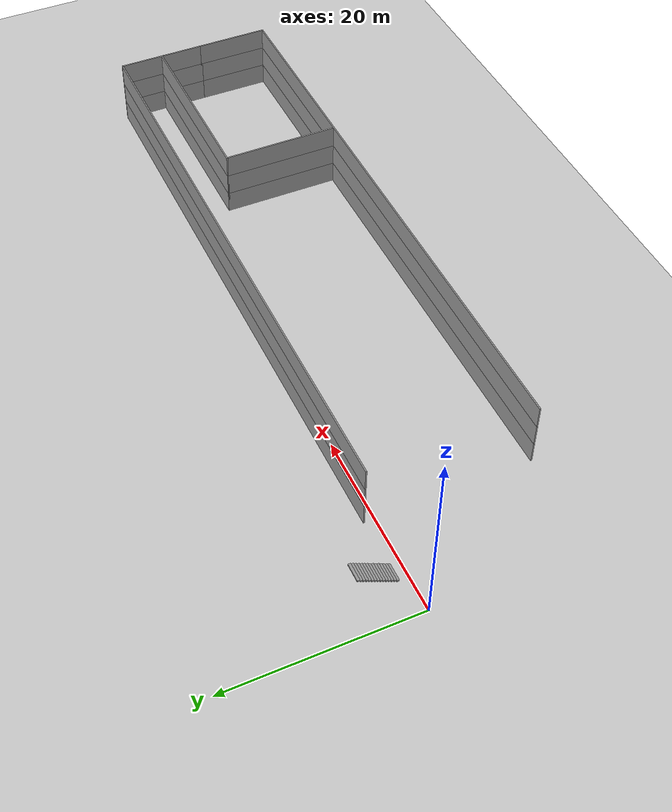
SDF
<sdf version="1.7">
 <world name="default">
  <model name="ground_plane">
   <pose>30 30 0 0 -0 0</pose>
   <static>1</static>
   <link name="link">
    <collision name="collision">
     <geometry><plane><normal>0 0 1</normal><size>100 100</size></plane></geometry>
     <surface><friction><ode><mu>100</mu><mu2>50</mu2></ode></friction></surface>
    </collision>
    <visual name="visual">
     <cast_shadows>0</cast_shadows>
     <geometry><plane><normal>0 0 1</normal><size>100 100</size></plane></geometry>
     <material>
      <script><uri>file://media/materials/scripts/gazebo.material</uri><name>Gazebo/Grey</name></script>
     </material>
    </visual>
   </link>
  </model>
  <model name="Soterrani_AT">
   <pose>30.7763 24.7178 0 0 0 -1.57187</pose>
   <link name="Stairs_2">
    <visual name="Stairs_2_Visual_0">
     <pose>22.8054 -27.5217 2.58333 0 -0 -1.5708</pose>
     <geometry><box><size>1.86465 0.272531 0.166667</size></box></geometry>
     <material>
      <script><uri>file://media/materials/scripts/gazebo.material</uri><name>Gazebo/Grey</name></script>
      <ambient>1 1 1 1</ambient>
     </material>
     <meta><layer>1</layer></meta>
    </visual>
    <collision name="Stairs_2_Collision_0">
     <geometry><box><size>1.86465 0.272531 0.166667</size></box></geometry>
     <pose>22.8054 -27.5217 2.58333 0 -0 -1.5708</pose>
    </collision>
    <visual name="Stairs_2_Visual_1">
     <pose>22.5329 -27.5217 2.75 0 -0 -1.5708</pose>
     <geometry><box><size>1.86465 0.272531 0.166667</size></box></geometry>
     <material>
      <script><uri>file://media/materials/scripts/gazebo.material</uri><name>Gazebo/Grey</name></script>
      <ambient>1 1 1 1</ambient>
     </material>
     <meta><layer>1</layer></meta>
    </visual>
    <collision name="Stairs_2_Collision_1">
     <geometry><box><size>1.86465 0.272531 0.166667</size></box></geometry>
     <pose>22.5329 -27.5217 2.75 0 -0 -1.5708</pose>
    </collision>
    <visual name="Stairs_2_Visual_2">
     <pose>22.2603 -27.5217 2.91667 0 -0 -1.5708</pose>
     <geometry><box><size>1.86465 0.272531 0.166667</size></box></geometry>
     <material>
      <script><uri>file://media/materials/scripts/gazebo.material</uri><name>Gazebo/Grey</name></script>
      <ambient>1 1 1 1</ambient>
     </material>
     <meta><layer>1</layer></meta>
    </visual>
    <collision name="Stairs_2_Collision_2">
     <geometry><box><size>1.86465 0.272531 0.166667</size></box></geometry>
     <pose>22.2603 -27.5217 2.91667 0 -0 -1.5708</pose>
    </collision>
    <visual name="Stairs_2_Visual_3">
     <pose>21.9878 -27.5217 3.08333 0 -0 -1.5708</pose>
     <geometry><box><size>1.86465 0.272531 0.166667</size></box></geometry>
     <material>
      <script><uri>file://media/materials/scripts/gazebo.material</uri><name>Gazebo/Grey</name></script>
      <ambient>1 1 1 1</ambient>
     </material>
     <meta><layer>1</layer></meta>
    </visual>
    <collision name="Stairs_2_Collision_3">
     <geometry><box><size>1.86465 0.272531 0.166667</size></box></geometry>
     <pose>21.9878 -27.5217 3.08333 0 -0 -1.5708</pose>
    </collision>
    <visual name="Stairs_2_Visual_4">
     <pose>21.7153 -27.5217 3.25 0 -0 -1.5708</pose>
     <geometry><box><size>1.86465 0.272531 0.166667</size></box></geometry>
     <material>
      <script><uri>file://media/materials/scripts/gazebo.material</uri><name>Gazebo/Grey</name></script>
      <ambient>1 1 1 1</ambient>
     </material>
     <meta><layer>1</layer></meta>
    </visual>
    <collision name="Stairs_2_Collision_4">
     <geometry><box><size>1.86465 0.272531 0.166667</size></box></geometry>
     <pose>21.7153 -27.5217 3.25 0 -0 -1.5708</pose>
    </collision>
    <visual name="Stairs_2_Visual_5">
     <pose>21.4427 -27.5217 3.41667 0 -0 -1.5708</pose>
     <geometry><box><size>1.86465 0.272531 0.166667</size></box></geometry>
     <material>
      <script><uri>file://media/materials/scripts/gazebo.material</uri><name>Gazebo/Grey</name></script>
      <ambient>1 1 1 1</ambient>
     </material>
     <meta><layer>1</layer></meta>
    </visual>
    <collision name="Stairs_2_Collision_5">
     <geometry><box><size>1.86465 0.272531 0.166667</size></box></geometry>
     <pose>21.4427 -27.5217 3.41667 0 -0 -1.5708</pose>
    </collision>
    <visual name="Stairs_2_Visual_6">
     <pose>21.1702 -27.5217 3.58333 0 -0 -1.5708</pose>
     <geometry><box><size>1.86465 0.272531 0.166667</size></box></geometry>
     <material>
      <script><uri>file://media/materials/scripts/gazebo.material</uri><name>Gazebo/Grey</name></script>
      <ambient>1 1 1 1</ambient>
     </material>
     <meta><layer>1</layer></meta>
    </visual>
    <collision name="Stairs_2_Collision_6">
     <geometry><box><size>1.86465 0.272531 0.166667</size></box></geometry>
     <pose>21.1702 -27.5217 3.58333 0 -0 -1.5708</pose>
    </collision>
    <visual name="Stairs_2_Visual_7">
     <pose>20.8977 -27.5217 3.75 0 -0 -1.5708</pose>
     <geometry><box><size>1.86465 0.272531 0.166667</size></box></geometry>
     <material>
      <script><uri>file://media/materials/scripts/gazebo.material</uri><name>Gazebo/Grey</name></script>
      <ambient>1 1 1 1</ambient>
     </material>
     <meta><layer>1</layer></meta>
    </visual>
    <collision name="Stairs_2_Collision_7">
     <geometry><box><size>1.86465 0.272531 0.166667</size></box></geometry>
     <pose>20.8977 -27.5217 3.75 0 -0 -1.5708</pose>
    </collision>
    <visual name="Stairs_2_Visual_8">
     <pose>20.6251 -27.5217 3.91667 0 -0 -1.5708</pose>
     <geometry><box><size>1.86465 0.272531 0.166667</size></box></geometry>
     <material>
      <script><uri>file://media/materials/scripts/gazebo.material</uri><name>Gazebo/Grey</name></script>
      <ambient>1 1 1 1</ambient>
     </material>
     <meta><layer>1</layer></meta>
    </visual>
    <collision name="Stairs_2_Collision_8">
     <geometry><box><size>1.86465 0.272531 0.166667</size></box></geometry>
     <pose>20.6251 -27.5217 3.91667 0 -0 -1.5708</pose>
    </collision>
    <visual name="Stairs_2_Visual_9">
     <pose>20.3526 -27.5217 4.08333 0 -0 -1.5708</pose>
     <geometry><box><size>1.86465 0.272531 0.166667</size></box></geometry>
     <material>
      <script><uri>file://media/materials/scripts/gazebo.material</uri><name>Gazebo/Grey</name></script>
      <ambient>1 1 1 1</ambient>
     </material>
     <meta><layer>1</layer></meta>
    </visual>
    <collision name="Stairs_2_Collision_9">
     <geometry><box><size>1.86465 0.272531 0.166667</size></box></geometry>
     <pose>20.3526 -27.5217 4.08333 0 -0 -1.5708</pose>
    </collision>
    <visual name="Stairs_2_Visual_10">
     <pose>20.0801 -27.5217 4.25 0 -0 -1.5708</pose>
     <geometry><box><size>1.86465 0.272531 0.166667</size></box></geometry>
     <material>
      <script><uri>file://media/materials/scripts/gazebo.material</uri><name>Gazebo/Grey</name></script>
      <ambient>1 1 1 1</ambient>
     </material>
     <meta><layer>1</layer></meta>
    </visual>
    <collision name="Stairs_2_Collision_10">
     <geometry><box><size>1.86465 0.272531 0.166667</size></box></geometry>
     <pose>20.0801 -27.5217 4.25 0 -0 -1.5708</pose>
    </collision>
    <visual name="Stairs_2_Visual_11">
     <pose>19.8076 -27.5217 4.41667 0 -0 -1.5708</pose>
     <geometry><box><size>1.86465 0.272531 0.166667</size></box></geometry>
     <material>
      <script><uri>file://media/materials/scripts/gazebo.material</uri><name>Gazebo/Grey</name></script>
      <ambient>1 1 1 1</ambient>
     </material>
     <meta><layer>1</layer></meta>
    </visual>
    <collision name="Stairs_2_Collision_11">
     <geometry><box><size>1.86465 0.272531 0.166667</size></box></geometry>
     <pose>19.8076 -27.5217 4.41667 0 -0 -1.5708</pose>
    </collision>
    <visual name="Stairs_2_Visual_12">
     <pose>19.535 -27.5217 4.58333 0 -0 -1.5708</pose>
     <geometry><box><size>1.86465 0.272531 0.166667</size></box></geometry>
     <material>
      <script><uri>file://media/materials/scripts/gazebo.material</uri><name>Gazebo/Grey</name></script>
      <ambient>1 1 1 1</ambient>
     </material>
     <meta><layer>1</layer></meta>
    </visual>
    <collision name="Stairs_2_Collision_12">
     <geometry><box><size>1.86465 0.272531 0.166667</size></box></geometry>
     <pose>19.535 -27.5217 4.58333 0 -0 -1.5708</pose>
    </collision>
    <visual name="Stairs_2_Visual_13">
     <pose>19.2625 -27.5217 4.75 0 -0 -1.5708</pose>
     <geometry><box><size>1.86465 0.272531 0.166667</size></box></geometry>
     <material>
      <script><uri>file://media/materials/scripts/gazebo.material</uri><name>Gazebo/Grey</name></script>
      <ambient>1 1 1 1</ambient>
     </material>
     <meta><layer>1</layer></meta>
    </visual>
    <collision name="Stairs_2_Collision_13">
     <geometry><box><size>1.86465 0.272531 0.166667</size></box></geometry>
     <pose>19.2625 -27.5217 4.75 0 -0 -1.5708</pose>
    </collision>
    <visual name="Stairs_2_Visual_14">
     <pose>18.99 -27.5217 4.91667 0 -0 -1.5708</pose>
     <geometry><box><size>1.86465 0.272531 0.166667</size></box></geometry>
     <material>
      <script><uri>file://media/materials/scripts/gazebo.material</uri><name>Gazebo/Grey</name></script>
      <ambient>1 1 1 1</ambient>
     </material>
     <meta><layer>1</layer></meta>
    </visual>
    <collision name="Stairs_2_Collision_14">
     <geometry><box><size>1.86465 0.272531 0.166667</size></box></geometry>
     <pose>18.99 -27.5217 4.91667 0 -0 -1.5708</pose>
    </collision>
   </link>
   <link name="Wall_194">
    <collision name="Wall_194_Collision">
     <geometry><box><size>64.5 0.15 2.5</size></box></geometry>
     <pose>0 0 1.25 0 -0 0</pose>
    </collision>
    <visual name="Wall_194_Visual">
     <pose>0 0 1.25 0 -0 0</pose>
     <geometry><box><size>64.5 0.15 2.5</size></box></geometry>
     <material>
      <script><uri>file://media/materials/scripts/gazebo.material</uri><name>Gazebo/Grey</name></script>
      <ambient>1 1 1 1</ambient>
     </material>
     <meta><layer>1</layer></meta>
    </visual>
    <pose>23.6394 12.0967 2.5 0 -0 -1.5708</pose>
   </link>
   <link name="Wall_195">
    <collision name="Wall_195_Collision">
     <geometry><box><size>9.75 0.15 2.5</size></box></geometry>
     <pose>0 0 1.25 0 -0 0</pose>
    </collision>
    <visual name="Wall_195_Visual">
     <pose>0 0 1.25 0 -0 0</pose>
     <geometry><box><size>9.75 0.15 2.5</size></box></geometry>
     <material>
      <script><uri>file://media/materials/scripts/gazebo.material</uri><name>Gazebo/Grey</name></script>
      <ambient>1 1 1 1</ambient>
     </material>
     <meta><layer>1</layer></meta>
    </visual>
    <pose>28.4394 44.2717 2.5 0 -0 0</pose>
   </link>
   <link name="Wall_196">
    <collision name="Wall_196_Collision">
     <geometry><box><size>8 0.15 2.5</size></box></geometry>
     <pose>0 0 1.25 0 -0 0</pose>
    </collision>
    <visual name="Wall_196_Visual">
     <pose>0 0 1.25 0 -0 0</pose>
     <geometry><box><size>8 0.15 2.5</size></box></geometry>
     <material>
      <script><uri>file://media/materials/scripts/gazebo.material</uri><name>Gazebo/Grey</name></script>
      <ambient>1 1 1 1</ambient>
     </material>
     <meta><layer>1</layer></meta>
    </visual>
    <pose>37.1644 44.2717 2.5 0 -0 0</pose>
   </link>
   <link name="Wall_197">
    <collision name="Wall_197_Collision">
     <geometry><box><size>64.5 0.15 2.5</size></box></geometry>
     <pose>0 0 1.25 0 -0 0</pose>
    </collision>
    <visual name="Wall_197_Visual">
     <pose>0 0 1.25 0 -0 0</pose>
     <geometry><box><size>64.5 0.15 2.5</size></box></geometry>
     <material>
      <script><uri>file://media/materials/scripts/gazebo.material</uri><name>Gazebo/Grey</name></script>
      <ambient>1 1 1 1</ambient>
     </material>
     <meta><layer>1</layer></meta>
    </visual>
    <pose>41.0894 12.0967 2.5 0 -0 -1.5708</pose>
   </link>
   <link name="Wall_204">
    <collision name="Wall_204_Collision">
     <geometry><box><size>20.25 0.15 2.5</size></box></geometry>
     <pose>0 0 1.25 0 -0 0</pose>
    </collision>
    <visual name="Wall_204_Visual">
     <pose>0 0 1.25 0 -0 0</pose>
     <geometry><box><size>20.25 0.15 2.5</size></box></geometry>
     <material>
      <script><uri>file://media/materials/scripts/gazebo.material</uri><name>Gazebo/Grey</name></script>
      <ambient>1 1 1 1</ambient>
     </material>
     <meta><layer>1</layer></meta>
    </visual>
    <pose>28.4396 34.1822 2.5 0 -0 -1.5708</pose>
   </link>
   <link name="Wall_205">
    <collision name="Wall_205_Collision">
     <geometry><box><size>12.75 0.15 2.5</size></box></geometry>
     <pose>0 0 1.25 0 -0 0</pose>
    </collision>
    <visual name="Wall_205_Visual">
     <pose>0 0 1.25 0 -0 0</pose>
     <geometry><box><size>12.75 0.15 2.5</size></box></geometry>
     <material>
      <script><uri>file://media/materials/scripts/gazebo.material</uri><name>Gazebo/Grey</name></script>
      <ambient>1 1 1 1</ambient>
     </material>
     <meta><layer>1</layer></meta>
    </visual>
    <pose>34.7396 24.1322 2.5 0 -0 0</pose>
   </link>
   <link name="Wall_264">
    <collision name="Wall_264_Collision">
     <geometry><box><size>64.5 0.15 2.5</size></box></geometry>
     <pose>0 0 1.25 0 -0 0</pose>
    </collision>
    <visual name="Wall_264_Visual">
     <pose>0 0 1.25 0 -0 0</pose>
     <geometry><box><size>64.5 0.15 2.5</size></box></geometry>
     <material>
      <script><uri>file://media/materials/scripts/gazebo.material</uri><name>Gazebo/Grey</name></script>
      <ambient>1 1 1 1</ambient>
     </material>
     <meta><layer>2</layer></meta>
    </visual>
    <pose>23.6394 12.0967 5 0 -0 -1.5708</pose>
   </link>
   <link name="Wall_265">
    <collision name="Wall_265_Collision">
     <geometry><box><size>9.75 0.15 2.5</size></box></geometry>
     <pose>0 0 1.25 0 -0 0</pose>
    </collision>
    <visual name="Wall_265_Visual">
     <pose>0 0 1.25 0 -0 0</pose>
     <geometry><box><size>9.75 0.15 2.5</size></box></geometry>
     <material>
      <script><uri>file://media/materials/scripts/gazebo.material</uri><name>Gazebo/Grey</name></script>
      <ambient>1 1 1 1</ambient>
     </material>
     <meta><layer>2</layer></meta>
    </visual>
    <pose>28.4394 44.2717 5 0 -0 0</pose>
   </link>
   <link name="Wall_266">
    <collision name="Wall_266_Collision">
     <geometry><box><size>8 0.15 2.5</size></box></geometry>
     <pose>0 0 1.25 0 -0 0</pose>
    </collision>
    <visual name="Wall_266_Visual">
     <pose>0 0 1.25 0 -0 0</pose>
     <geometry><box><size>8 0.15 2.5</size></box></geometry>
     <material>
      <script><uri>file://media/materials/scripts/gazebo.material</uri><name>Gazebo/Grey</name></script>
      <ambient>1 1 1 1</ambient>
     </material>
     <meta><layer>2</layer></meta>
    </visual>
    <pose>37.1644 44.2717 5 0 -0 0</pose>
   </link>
   <link name="Wall_267">
    <collision name="Wall_267_Collision">
     <geometry><box><size>64.5 0.15 2.5</size></box></geometry>
     <pose>0 0 1.25 0 -0 0</pose>
    </collision>
    <visual name="Wall_267_Visual">
     <pose>0 0 1.25 0 -0 0</pose>
     <geometry><box><size>64.5 0.15 2.5</size></box></geometry>
     <material>
      <script><uri>file://media/materials/scripts/gazebo.material</uri><name>Gazebo/Grey</name></script>
      <ambient>1 1 1 1</ambient>
     </material>
     <meta><layer>2</layer></meta>
    </visual>
    <pose>41.0894 12.0967 5 0 -0 -1.5708</pose>
   </link>
   <link name="Wall_274">
    <collision name="Wall_274_Collision">
     <geometry><box><size>20.25 0.15 2.5</size></box></geometry>
     <pose>0 0 1.25 0 -0 0</pose>
    </collision>
    <visual name="Wall_274_Visual">
     <pose>0 0 1.25 0 -0 0</pose>
     <geometry><box><size>20.25 0.15 2.5</size></box></geometry>
     <material>
      <script><uri>file://media/materials/scripts/gazebo.material</uri><name>Gazebo/Grey</name></script>
      <ambient>1 1 1 1</ambient>
     </material>
     <meta><layer>2</layer></meta>
    </visual>
    <pose>28.4396 34.1822 5 0 -0 -1.5708</pose>
   </link>
   <link name="Wall_275">
    <collision name="Wall_275_Collision">
     <geometry><box><size>12.75 0.15 2.5</size></box></geometry>
     <pose>0 0 1.25 0 -0 0</pose>
    </collision>
    <visual name="Wall_275_Visual">
     <pose>0 0 1.25 0 -0 0</pose>
     <geometry><box><size>12.75 0.15 2.5</size></box></geometry>
     <material>
      <script><uri>file://media/materials/scripts/gazebo.material</uri><name>Gazebo/Grey</name></script>
      <ambient>1 1 1 1</ambient>
     </material>
     <meta><layer>2</layer></meta>
    </visual>
    <pose>34.7396 24.1322 5 0 -0 0</pose>
   </link>
   <link name="Wall_73">
    <collision name="Wall_73_Collision">
     <geometry><box><size>64.5 0.15 2.5</size></box></geometry>
     <pose>0 0 1.25 0 -0 0</pose>
    </collision>
    <visual name="Wall_73_Visual">
     <pose>0 0 1.25 0 -0 0</pose>
     <geometry><box><size>64.5 0.15 2.5</size></box></geometry>
     <material>
      <script><uri>file://media/materials/scripts/gazebo.material</uri><name>Gazebo/Grey</name></script>
      <ambient>1 1 1 1</ambient>
     </material>
     <meta><layer>0</layer></meta>
    </visual>
    <pose>23.6394 12.0967 0 0 -0 -1.5708</pose>
   </link>
   <link name="Wall_75">
    <collision name="Wall_75_Collision">
     <geometry><box><size>9.75 0.15 2.5</size></box></geometry>
     <pose>0 0 1.25 0 -0 0</pose>
    </collision>
    <visual name="Wall_75_Visual">
     <pose>0 0 1.25 0 -0 0</pose>
     <geometry><box><size>9.75 0.15 2.5</size></box></geometry>
     <material>
      <script><uri>file://media/materials/scripts/gazebo.material</uri><name>Gazebo/Grey</name></script>
      <ambient>1 1 1 1</ambient>
     </material>
     <meta><layer>0</layer></meta>
    </visual>
    <pose>28.4394 44.2717 0 0 -0 0</pose>
   </link>
   <link name="Wall_76">
    <collision name="Wall_76_Collision">
     <geometry><box><size>8 0.15 2.5</size></box></geometry>
     <pose>0 0 1.25 0 -0 0</pose>
    </collision>
    <visual name="Wall_76_Visual">
     <pose>0 0 1.25 0 -0 0</pose>
     <geometry><box><size>8 0.15 2.5</size></box></geometry>
     <material>
      <script><uri>file://media/materials/scripts/gazebo.material</uri><name>Gazebo/Grey</name></script>
      <ambient>1 1 1 1</ambient>
     </material>
     <meta><layer>0</layer></meta>
    </visual>
    <pose>37.1644 44.2717 0 0 -0 0</pose>
   </link>
   <link name="Wall_77">
    <collision name="Wall_77_Collision">
     <geometry><box><size>64.5 0.15 2.5</size></box></geometry>
     <pose>0 0 1.25 0 -0 0</pose>
    </collision>
    <visual name="Wall_77_Visual">
     <pose>0 0 1.25 0 -0 0</pose>
     <geometry><box><size>64.5 0.15 2.5</size></box></geometry>
     <material>
      <script><uri>file://media/materials/scripts/gazebo.material</uri><name>Gazebo/Grey</name></script>
      <ambient>1 1 1 1</ambient>
     </material>
     <meta><layer>0</layer></meta>
    </visual>
    <pose>41.0894 12.0967 0 0 -0 -1.5708</pose>
   </link>
   <link name="Wall_89">
    <collision name="Wall_89_Collision">
     <geometry><box><size>20.25 0.15 2.5</size></box></geometry>
     <pose>0 0 1.25 0 -0 0</pose>
    </collision>
    <visual name="Wall_89_Visual">
     <pose>0 0 1.25 0 -0 0</pose>
     <geometry><box><size>20.25 0.15 2.5</size></box></geometry>
     <material>
      <script><uri>file://media/materials/scripts/gazebo.material</uri><name>Gazebo/Grey</name></script>
      <ambient>1 1 1 1</ambient>
     </material>
     <meta><layer>0</layer></meta>
    </visual>
    <pose>28.4396 34.1822 0 0 -0 -1.5708</pose>
   </link>
   <link name="Wall_90">
    <collision name="Wall_90_Collision">
     <geometry><box><size>12.75 0.15 2.5</size></box></geometry>
     <pose>0 0 1.25 0 -0 0</pose>
    </collision>
    <visual name="Wall_90_Visual">
     <pose>0 0 1.25 0 -0 0</pose>
     <geometry><box><size>12.75 0.15 2.5</size></box></geometry>
     <material>
      <script><uri>file://media/materials/scripts/gazebo.material</uri><name>Gazebo/Grey</name></script>
      <ambient>1 1 1 1</ambient>
     </material>
     <meta><layer>0</layer></meta>
    </visual>
    <pose>34.7396 24.1322 0 0 -0 0</pose>
   </link>
   <static>1</static>
  </model>
 </world>
</sdf>
